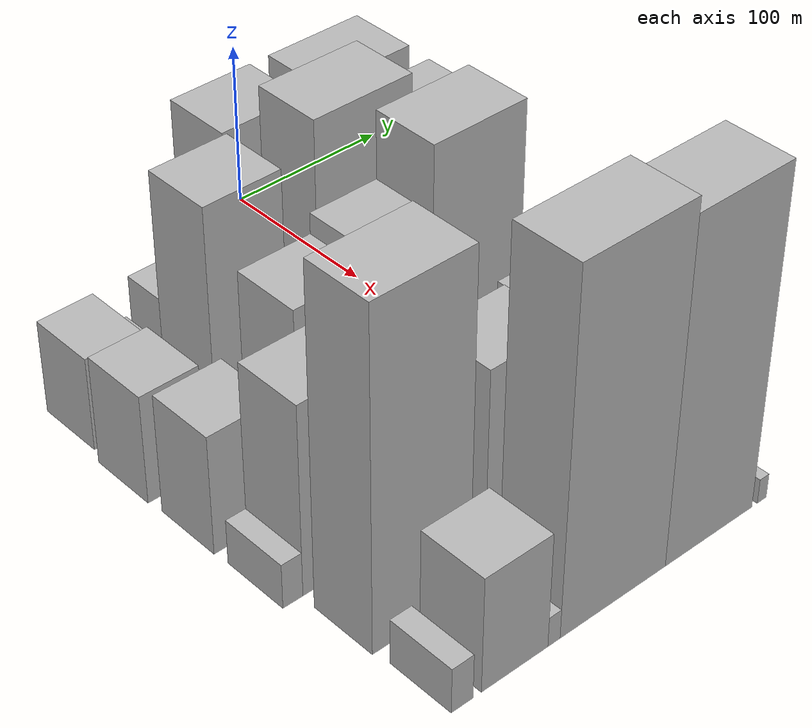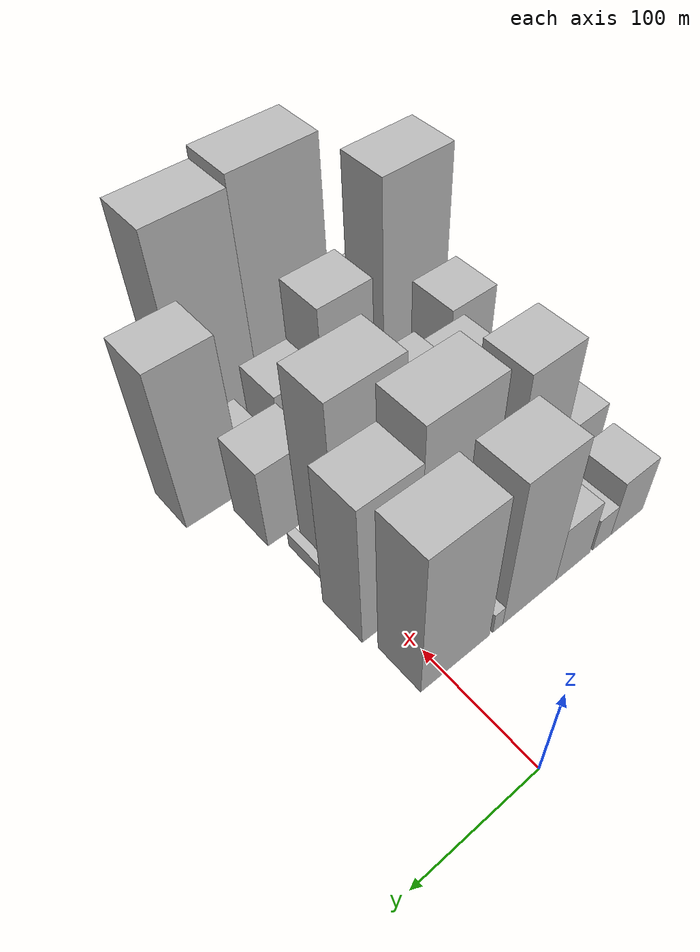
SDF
<sdf version="1.6">
 <world name="default">
  <model name="building_17">
   <static>1</static>
   <pose>100.0000 -172.8965 0 0.000000 0.000000 0.000000</pose>
   <link name="link">
    <pose>0 0 28.50 0 0 0</pose>
    <collision name="collision"><geometry><box><size>40.0000 33.7787 57.0000</size></box></geometry></collision>
    <visual name="visual">
     <cast_shadows>0</cast_shadows>
     <geometry><box><size>40.0000 33.7787 57.0000</size></box></geometry>
     <material>
      <script>
       <uri>model://HANNAS_wall/materials/scripts</uri>
       <uri>model://HANNAS_wall/materials/textures</uri>
       <name>vrc/HANNAS_wall</name>
      </script>
     </material>
    </visual>
   </link>
  </model>
  <model name="building_18">
   <static>1</static>
   <pose>100.0000 -146.7060 0 0.000000 0.000000 0.000000</pose>
   <link name="link">
    <pose>0 0 16.50 0 0 0</pose>
    <collision name="collision"><geometry><box><size>40.0000 18.6024 33.0000</size></box></geometry></collision>
    <visual name="visual">
     <cast_shadows>0</cast_shadows>
     <geometry><box><size>40.0000 18.6024 33.0000</size></box></geometry>
     <material>
      <script>
       <uri>model://HANNAS_wall/materials/scripts</uri>
       <uri>model://HANNAS_wall/materials/textures</uri>
       <name>vrc/HANNAS_wall</name>
      </script>
     </material>
    </visual>
   </link>
  </model>
  <model name="building_19">
   <static>1</static>
   <pose>100.0000 -117.5233 0 0.000000 0.000000 0.000000</pose>
   <link name="link">
    <pose>0 0 28.50 0 0 0</pose>
    <collision name="collision"><geometry><box><size>40.0000 33.7629 57.0000</size></box></geometry></collision>
    <visual name="visual">
     <cast_shadows>0</cast_shadows>
     <geometry><box><size>40.0000 33.7629 57.0000</size></box></geometry>
     <material>
      <script>
       <uri>model://HANNAS_wall/materials/scripts</uri>
       <uri>model://HANNAS_wall/materials/textures</uri>
       <name>vrc/HANNAS_wall</name>
      </script>
     </material>
    </visual>
   </link>
  </model>
  <model name="building_20">
   <static>1</static>
   <pose>100.0000 -75.8628 0 0.000000 0.000000 0.000000</pose>
   <link name="link">
    <pose>0 0 73.50 0 0 0</pose>
    <collision name="collision"><geometry><box><size>40.0000 49.5582 147.0000</size></box></geometry></collision>
    <visual name="visual">
     <cast_shadows>0</cast_shadows>
     <geometry><box><size>40.0000 49.5582 147.0000</size></box></geometry>
     <material>
      <script>
       <uri>model://HANNAS_wall/materials/scripts</uri>
       <uri>model://HANNAS_wall/materials/textures</uri>
       <name>vrc/HANNAS_wall</name>
      </script>
     </material>
    </visual>
   </link>
  </model>
  <model name="building_21">
   <static>1</static>
   <pose>100.0000 -46.5748 0 0.000000 0.000000 0.000000</pose>
   <link name="link">
    <pose>0 0 10.50 0 0 0</pose>
    <collision name="collision"><geometry><box><size>40.0000 9.0179 21.0000</size></box></geometry></collision>
    <visual name="visual">
     <cast_shadows>0</cast_shadows>
     <geometry><box><size>40.0000 9.0179 21.0000</size></box></geometry>
     <material>
      <script>
       <uri>model://HANNAS_wall/materials/scripts</uri>
       <uri>model://HANNAS_wall/materials/textures</uri>
       <name>vrc/HANNAS_wall</name>
      </script>
     </material>
    </visual>
   </link>
  </model>
  <model name="building_22">
   <static>1</static>
   <pose>100.0000 -9.7291 0 0.000000 0.000000 0.000000</pose>
   <link name="link">
    <pose>0 0 73.50 0 0 0</pose>
    <collision name="collision"><geometry><box><size>40.0000 58.6735 147.0000</size></box></geometry></collision>
    <visual name="visual">
     <cast_shadows>0</cast_shadows>
     <geometry><box><size>40.0000 58.6735 147.0000</size></box></geometry>
     <material>
      <script>
       <uri>model://HANNAS_wall/materials/scripts</uri>
       <uri>model://HANNAS_wall/materials/textures</uri>
       <name>vrc/HANNAS_wall</name>
      </script>
     </material>
    </visual>
   </link>
  </model>
  <model name="building_64">
   <static>1</static>
   <pose>149.0000 -176.1616 0 0.000000 0.000000 0.000000</pose>
   <link name="link">
    <pose>0 0 33.00 0 0 0</pose>
    <collision name="collision"><geometry><box><size>40.0000 35.1316 66.0000</size></box></geometry></collision>
    <visual name="visual">
     <cast_shadows>0</cast_shadows>
     <geometry><box><size>40.0000 35.1316 66.0000</size></box></geometry>
     <material>
      <script>
       <uri>model://HANNAS_wall/materials/scripts</uri>
       <uri>model://HANNAS_wall/materials/textures</uri>
       <name>vrc/HANNAS_wall</name>
      </script>
     </material>
    </visual>
   </link>
  </model>
  <model name="building_65">
   <static>1</static>
   <pose>149.0000 -127.5393 0 0.000000 0.000000 0.000000</pose>
   <link name="link">
    <pose>0 0 76.50 0 0 0</pose>
    <collision name="collision"><geometry><box><size>40.0000 46.1130 153.0000</size></box></geometry></collision>
    <visual name="visual">
     <cast_shadows>0</cast_shadows>
     <geometry><box><size>40.0000 46.1130 153.0000</size></box></geometry>
     <material>
      <script>
       <uri>model://HANNAS_wall/materials/scripts</uri>
       <uri>model://HANNAS_wall/materials/textures</uri>
       <name>vrc/HANNAS_wall</name>
      </script>
     </material>
    </visual>
   </link>
  </model>
  <model name="building_66">
   <static>1</static>
   <pose>149.0000 -89.4264 0 0.000000 0.000000 0.000000</pose>
   <link name="link">
    <pose>0 0 10.50 0 0 0</pose>
    <collision name="collision"><geometry><box><size>40.0000 10.1128 21.0000</size></box></geometry></collision>
    <visual name="visual">
     <cast_shadows>0</cast_shadows>
     <geometry><box><size>40.0000 10.1128 21.0000</size></box></geometry>
     <material>
      <script>
       <uri>model://HANNAS_wall/materials/scripts</uri>
       <uri>model://HANNAS_wall/materials/textures</uri>
       <name>vrc/HANNAS_wall</name>
      </script>
     </material>
    </visual>
   </link>
  </model>
  <model name="building_67">
   <static>1</static>
   <pose>149.0000 -53.6856 0 0.000000 0.000000 0.000000</pose>
   <link name="link">
    <pose>0 0 85.50 0 0 0</pose>
    <collision name="collision"><geometry><box><size>40.0000 61.3687 171.0000</size></box></geometry></collision>
    <visual name="visual">
     <cast_shadows>0</cast_shadows>
     <geometry><box><size>40.0000 61.3687 171.0000</size></box></geometry>
     <material>
      <script>
       <uri>model://HANNAS_wall/materials/scripts</uri>
       <uri>model://HANNAS_wall/materials/textures</uri>
       <name>vrc/HANNAS_wall</name>
      </script>
     </material>
    </visual>
   </link>
  </model>
  <model name="building_68">
   <static>1</static>
   <pose>149.0000 0.9310 0 0.000000 0.000000 0.000000</pose>
   <link name="link">
    <pose>0 0 70.50 0 0 0</pose>
    <collision name="collision"><geometry><box><size>40.0000 47.8645 141.0000</size></box></geometry></collision>
    <visual name="visual">
     <cast_shadows>0</cast_shadows>
     <geometry><box><size>40.0000 47.8645 141.0000</size></box></geometry>
     <material>
      <script>
       <uri>model://HANNAS_wall/materials/scripts</uri>
       <uri>model://HANNAS_wall/materials/textures</uri>
       <name>vrc/HANNAS_wall</name>
      </script>
     </material>
    </visual>
   </link>
  </model>
  <model name="building_113">
   <static>1</static>
   <pose>198.0000 -171.9728 0 0.000000 0.000000 0.000000</pose>
   <link name="link">
    <pose>0 0 36.00 0 0 0</pose>
    <collision name="collision"><geometry><box><size>40.0000 40.4430 72.0000</size></box></geometry></collision>
    <visual name="visual">
     <cast_shadows>0</cast_shadows>
     <geometry><box><size>40.0000 40.4430 72.0000</size></box></geometry>
     <material>
      <script>
       <uri>model://HANNAS_wall/materials/scripts</uri>
       <uri>model://HANNAS_wall/materials/textures</uri>
       <name>vrc/HANNAS_wall</name>
      </script>
     </material>
    </visual>
   </link>
  </model>
  <model name="building_114">
   <static>1</static>
   <pose>198.0000 -145.6920 0 0.000000 0.000000 0.000000</pose>
   <link name="link">
    <pose>0 0 13.50 0 0 0</pose>
    <collision name="collision"><geometry><box><size>40.0000 12.1185 27.0000</size></box></geometry></collision>
    <visual name="visual">
     <cast_shadows>0</cast_shadows>
     <geometry><box><size>40.0000 12.1185 27.0000</size></box></geometry>
     <material>
      <script>
       <uri>model://HANNAS_wall/materials/scripts</uri>
       <uri>model://HANNAS_wall/materials/textures</uri>
       <name>vrc/HANNAS_wall</name>
      </script>
     </material>
    </visual>
   </link>
  </model>
  <model name="building_115">
   <static>1</static>
   <pose>198.0000 -117.6447 0 0.000000 0.000000 0.000000</pose>
   <link name="link">
    <pose>0 0 58.50 0 0 0</pose>
    <collision name="collision"><geometry><box><size>40.0000 43.9761 117.0000</size></box></geometry></collision>
    <visual name="visual">
     <cast_shadows>0</cast_shadows>
     <geometry><box><size>40.0000 43.9761 117.0000</size></box></geometry>
     <material>
      <script>
       <uri>model://HANNAS_wall/materials/scripts</uri>
       <uri>model://HANNAS_wall/materials/textures</uri>
       <name>vrc/HANNAS_wall</name>
      </script>
     </material>
    </visual>
   </link>
  </model>
  <model name="building_116">
   <static>1</static>
   <pose>198.0000 -74.8340 0 0.000000 0.000000 0.000000</pose>
   <link name="link">
    <pose>0 0 64.50 0 0 0</pose>
    <collision name="collision"><geometry><box><size>40.0000 41.6453 129.0000</size></box></geometry></collision>
    <visual name="visual">
     <cast_shadows>0</cast_shadows>
     <geometry><box><size>40.0000 41.6453 129.0000</size></box></geometry>
     <material>
      <script>
       <uri>model://HANNAS_wall/materials/scripts</uri>
       <uri>model://HANNAS_wall/materials/textures</uri>
       <name>vrc/HANNAS_wall</name>
      </script>
     </material>
    </visual>
   </link>
  </model>
  <model name="building_117">
   <static>1</static>
   <pose>198.0000 -24.2948 0 0.000000 0.000000 0.000000</pose>
   <link name="link">
    <pose>0 0 84.00 0 0 0</pose>
    <collision name="collision"><geometry><box><size>40.0000 59.4331 168.0000</size></box></geometry></collision>
    <visual name="visual">
     <cast_shadows>0</cast_shadows>
     <geometry><box><size>40.0000 59.4331 168.0000</size></box></geometry>
     <material>
      <script>
       <uri>model://HANNAS_wall/materials/scripts</uri>
       <uri>model://HANNAS_wall/materials/textures</uri>
       <name>vrc/HANNAS_wall</name>
      </script>
     </material>
    </visual>
   </link>
  </model>
  <model name="building_118">
   <static>1</static>
   <pose>198.0000 11.9076 0 0.000000 0.000000 0.000000</pose>
   <link name="link">
    <pose>0 0 7.50 0 0 0</pose>
    <collision name="collision"><geometry><box><size>40.0000 6.9717 15.0000</size></box></geometry></collision>
    <visual name="visual">
     <cast_shadows>0</cast_shadows>
     <geometry><box><size>40.0000 6.9717 15.0000</size></box></geometry>
     <material>
      <script>
       <uri>model://HANNAS_wall/materials/scripts</uri>
       <uri>model://HANNAS_wall/materials/textures</uri>
       <name>vrc/HANNAS_wall</name>
      </script>
     </material>
    </visual>
   </link>
  </model>
  <model name="building_161">
   <static>1</static>
   <pose>247.0000 -185.0529 0 0.000000 0.000000 0.000000</pose>
   <link name="link">
    <pose>0 0 13.50 0 0 0</pose>
    <collision name="collision"><geometry><box><size>40.0000 11.9383 27.0000</size></box></geometry></collision>
    <visual name="visual">
     <cast_shadows>0</cast_shadows>
     <geometry><box><size>40.0000 11.9383 27.0000</size></box></geometry>
     <material>
      <script>
       <uri>model://HANNAS_wall/materials/scripts</uri>
       <uri>model://HANNAS_wall/materials/textures</uri>
       <name>vrc/HANNAS_wall</name>
      </script>
     </material>
    </visual>
   </link>
  </model>
  <model name="building_162">
   <static>1</static>
   <pose>247.0000 -158.8027 0 0.000000 0.000000 0.000000</pose>
   <link name="link">
    <pose>0 0 57.00 0 0 0</pose>
    <collision name="collision"><geometry><box><size>40.0000 40.5620 114.0000</size></box></geometry></collision>
    <visual name="visual">
     <cast_shadows>0</cast_shadows>
     <geometry><box><size>40.0000 40.5620 114.0000</size></box></geometry>
     <material>
      <script>
       <uri>model://HANNAS_wall/materials/scripts</uri>
       <uri>model://HANNAS_wall/materials/textures</uri>
       <name>vrc/HANNAS_wall</name>
      </script>
     </material>
    </visual>
   </link>
  </model>
  <model name="building_163">
   <static>1</static>
   <pose>247.0000 -127.0566 0 0.000000 0.000000 0.000000</pose>
   <link name="link">
    <pose>0 0 19.50 0 0 0</pose>
    <collision name="collision"><geometry><box><size>40.0000 22.9303 39.0000</size></box></geometry></collision>
    <visual name="visual">
     <cast_shadows>0</cast_shadows>
     <geometry><box><size>40.0000 22.9303 39.0000</size></box></geometry>
     <material>
      <script>
       <uri>model://HANNAS_wall/materials/scripts</uri>
       <uri>model://HANNAS_wall/materials/textures</uri>
       <name>vrc/HANNAS_wall</name>
      </script>
     </material>
    </visual>
   </link>
  </model>
  <model name="building_164">
   <static>1</static>
   <pose>247.0000 -101.3671 0 0.000000 0.000000 0.000000</pose>
   <link name="link">
    <pose>0 0 15.00 0 0 0</pose>
    <collision name="collision"><geometry><box><size>40.0000 16.4486 30.0000</size></box></geometry></collision>
    <visual name="visual">
     <cast_shadows>0</cast_shadows>
     <geometry><box><size>40.0000 16.4486 30.0000</size></box></geometry>
     <material>
      <script>
       <uri>model://HANNAS_wall/materials/scripts</uri>
       <uri>model://HANNAS_wall/materials/textures</uri>
       <name>vrc/HANNAS_wall</name>
      </script>
     </material>
    </visual>
   </link>
  </model>
  <model name="building_165">
   <static>1</static>
   <pose>247.0000 -70.6679 0 0.000000 0.000000 0.000000</pose>
   <link name="link">
    <pose>0 0 27.00 0 0 0</pose>
    <collision name="collision"><geometry><box><size>40.0000 28.9497 54.0000</size></box></geometry></collision>
    <visual name="visual">
     <cast_shadows>0</cast_shadows>
     <geometry><box><size>40.0000 28.9497 54.0000</size></box></geometry>
     <material>
      <script>
       <uri>model://HANNAS_wall/materials/scripts</uri>
       <uri>model://HANNAS_wall/materials/textures</uri>
       <name>vrc/HANNAS_wall</name>
      </script>
     </material>
    </visual>
   </link>
  </model>
  <model name="building_166">
   <static>1</static>
   <pose>247.0000 -45.3790 0 0.000000 0.000000 0.000000</pose>
   <link name="link">
    <pose>0 0 19.50 0 0 0</pose>
    <collision name="collision"><geometry><box><size>40.0000 21.6282 39.0000</size></box></geometry></collision>
    <visual name="visual">
     <cast_shadows>0</cast_shadows>
     <geometry><box><size>40.0000 21.6282 39.0000</size></box></geometry>
     <material>
      <script>
       <uri>model://HANNAS_wall/materials/scripts</uri>
       <uri>model://HANNAS_wall/materials/textures</uri>
       <name>vrc/HANNAS_wall</name>
      </script>
     </material>
    </visual>
   </link>
  </model>
  <model name="building_167">
   <static>1</static>
   <pose>247.0000 -24.8988 0 0.000000 0.000000 0.000000</pose>
   <link name="link">
    <pose>0 0 12.00 0 0 0</pose>
    <collision name="collision"><geometry><box><size>40.0000 11.3321 24.0000</size></box></geometry></collision>
    <visual name="visual">
     <cast_shadows>0</cast_shadows>
     <geometry><box><size>40.0000 11.3321 24.0000</size></box></geometry>
     <material>
      <script>
       <uri>model://HANNAS_wall/materials/scripts</uri>
       <uri>model://HANNAS_wall/materials/textures</uri>
       <name>vrc/HANNAS_wall</name>
      </script>
     </material>
    </visual>
   </link>
  </model>
  <model name="building_168">
   <static>1</static>
   <pose>247.0000 3.5752 0 0.000000 0.000000 0.000000</pose>
   <link name="link">
    <pose>0 0 39.00 0 0 0</pose>
    <collision name="collision"><geometry><box><size>40.0000 45.6160 78.0000</size></box></geometry></collision>
    <visual name="visual">
     <cast_shadows>0</cast_shadows>
     <geometry><box><size>40.0000 45.6160 78.0000</size></box></geometry>
     <material>
      <script>
       <uri>model://HANNAS_wall/materials/scripts</uri>
       <uri>model://HANNAS_wall/materials/textures</uri>
       <name>vrc/HANNAS_wall</name>
      </script>
     </material>
    </visual>
   </link>
  </model>
  <model name="building_217">
   <static>1</static>
   <pose>296.0000 -149.9279 0 0.000000 0.000000 0.000000</pose>
   <link name="link">
    <pose>0 0 99.00 0 0 0</pose>
    <collision name="collision"><geometry><box><size>40.0000 59.9232 198.0000</size></box></geometry></collision>
    <visual name="visual">
     <cast_shadows>0</cast_shadows>
     <geometry><box><size>40.0000 59.9232 198.0000</size></box></geometry>
     <material>
      <script>
       <uri>model://HANNAS_wall/materials/scripts</uri>
       <uri>model://HANNAS_wall/materials/textures</uri>
       <name>vrc/HANNAS_wall</name>
      </script>
     </material>
    </visual>
   </link>
  </model>
  <model name="building_218">
   <static>1</static>
   <pose>296.0000 -87.5453 0 0.000000 0.000000 0.000000</pose>
   <link name="link">
    <pose>0 0 63.00 0 0 0</pose>
    <collision name="collision"><geometry><box><size>40.0000 46.8420 126.0000</size></box></geometry></collision>
    <visual name="visual">
     <cast_shadows>0</cast_shadows>
     <geometry><box><size>40.0000 46.8420 126.0000</size></box></geometry>
     <material>
      <script>
       <uri>model://HANNAS_wall/materials/scripts</uri>
       <uri>model://HANNAS_wall/materials/textures</uri>
       <name>vrc/HANNAS_wall</name>
      </script>
     </material>
    </visual>
   </link>
  </model>
  <model name="building_219">
   <static>1</static>
   <pose>296.0000 -43.8783 0 0.000000 0.000000 0.000000</pose>
   <link name="link">
    <pose>0 0 36.00 0 0 0</pose>
    <collision name="collision"><geometry><box><size>40.0000 40.4922 72.0000</size></box></geometry></collision>
    <visual name="visual">
     <cast_shadows>0</cast_shadows>
     <geometry><box><size>40.0000 40.4922 72.0000</size></box></geometry>
     <material>
      <script>
       <uri>model://HANNAS_wall/materials/scripts</uri>
       <uri>model://HANNAS_wall/materials/textures</uri>
       <name>vrc/HANNAS_wall</name>
      </script>
     </material>
    </visual>
   </link>
  </model>
  <model name="building_220">
   <static>1</static>
   <pose>296.0000 -19.4267 0 0.000000 0.000000 0.000000</pose>
   <link name="link">
    <pose>0 0 9.00 0 0 0</pose>
    <collision name="collision"><geometry><box><size>40.0000 8.4109 18.0000</size></box></geometry></collision>
    <visual name="visual">
     <cast_shadows>0</cast_shadows>
     <geometry><box><size>40.0000 8.4109 18.0000</size></box></geometry>
     <material>
      <script>
       <uri>model://HANNAS_wall/materials/scripts</uri>
       <uri>model://HANNAS_wall/materials/textures</uri>
       <name>vrc/HANNAS_wall</name>
      </script>
     </material>
    </visual>
   </link>
  </model>
  <model name="building_221">
   <static>1</static>
   <pose>296.0000 -2.4425 0 0.000000 0.000000 0.000000</pose>
   <link name="link">
    <pose>0 0 22.50 0 0 0</pose>
    <collision name="collision"><geometry><box><size>40.0000 25.5575 45.0000</size></box></geometry></collision>
    <visual name="visual">
     <cast_shadows>0</cast_shadows>
     <geometry><box><size>40.0000 25.5575 45.0000</size></box></geometry>
     <material>
      <script>
       <uri>model://HANNAS_wall/materials/scripts</uri>
       <uri>model://HANNAS_wall/materials/textures</uri>
       <name>vrc/HANNAS_wall</name>
      </script>
     </material>
    </visual>
   </link>
  </model>
  <model name="building_222">
   <static>1</static>
   <pose>296.0000 35.0848 0 0.000000 0.000000 0.000000</pose>
   <link name="link">
    <pose>0 0 75.00 0 0 0</pose>
    <collision name="collision"><geometry><box><size>40.0000 49.4970 150.0000</size></box></geometry></collision>
    <visual name="visual">
     <cast_shadows>0</cast_shadows>
     <geometry><box><size>40.0000 49.4970 150.0000</size></box></geometry>
     <material>
      <script>
       <uri>model://HANNAS_wall/materials/scripts</uri>
       <uri>model://HANNAS_wall/materials/textures</uri>
       <name>vrc/HANNAS_wall</name>
      </script>
     </material>
    </visual>
   </link>
  </model>
  <model name="building_268">
   <static>1</static>
   <pose>345.0000 -170.9369 0 0.000000 0.000000 0.000000</pose>
   <link name="link">
    <pose>0 0 13.50 0 0 0</pose>
    <collision name="collision"><geometry><box><size>40.0000 13.0807 27.0000</size></box></geometry></collision>
    <visual name="visual">
     <cast_shadows>0</cast_shadows>
     <geometry><box><size>40.0000 13.0807 27.0000</size></box></geometry>
     <material>
      <script>
       <uri>model://HANNAS_wall/materials/scripts</uri>
       <uri>model://HANNAS_wall/materials/textures</uri>
       <name>vrc/HANNAS_wall</name>
      </script>
     </material>
    </visual>
   </link>
  </model>
  <model name="building_269">
   <static>1</static>
   <pose>345.0000 -138.8468 0 0.000000 0.000000 0.000000</pose>
   <link name="link">
    <pose>0 0 34.50 0 0 0</pose>
    <collision name="collision"><geometry><box><size>40.0000 41.0995 69.0000</size></box></geometry></collision>
    <visual name="visual">
     <cast_shadows>0</cast_shadows>
     <geometry><box><size>40.0000 41.0995 69.0000</size></box></geometry>
     <material>
      <script>
       <uri>model://HANNAS_wall/materials/scripts</uri>
       <uri>model://HANNAS_wall/materials/textures</uri>
       <name>vrc/HANNAS_wall</name>
      </script>
     </material>
    </visual>
   </link>
  </model>
  <model name="building_270">
   <static>1</static>
   <pose>345.0000 -114.4339 0 0.000000 0.000000 0.000000</pose>
   <link name="link">
    <pose>0 0 9.00 0 0 0</pose>
    <collision name="collision"><geometry><box><size>40.0000 7.7265 18.0000</size></box></geometry></collision>
    <visual name="visual">
     <cast_shadows>0</cast_shadows>
     <geometry><box><size>40.0000 7.7265 18.0000</size></box></geometry>
     <material>
      <script>
       <uri>model://HANNAS_wall/materials/scripts</uri>
       <uri>model://HANNAS_wall/materials/textures</uri>
       <name>vrc/HANNAS_wall</name>
      </script>
     </material>
    </visual>
   </link>
  </model>
  <model name="building_271">
   <static>1</static>
   <pose>345.0000 -75.8819 0 0.000000 0.000000 0.000000</pose>
   <link name="link">
    <pose>0 0 105.00 0 0 0</pose>
    <collision name="collision"><geometry><box><size>40.0000 69.3774 210.0000</size></box></geometry></collision>
    <visual name="visual">
     <cast_shadows>0</cast_shadows>
     <geometry><box><size>40.0000 69.3774 210.0000</size></box></geometry>
     <material>
      <script>
       <uri>model://HANNAS_wall/materials/scripts</uri>
       <uri>model://HANNAS_wall/materials/textures</uri>
       <name>vrc/HANNAS_wall</name>
      </script>
     </material>
    </visual>
   </link>
  </model>
  <model name="building_272">
   <static>1</static>
   <pose>345.0000 -10.7732 0 0.000000 0.000000 0.000000</pose>
   <link name="link">
    <pose>0 0 100.50 0 0 0</pose>
    <collision name="collision"><geometry><box><size>40.0000 60.8400 201.0000</size></box></geometry></collision>
    <visual name="visual">
     <cast_shadows>0</cast_shadows>
     <geometry><box><size>40.0000 60.8400 201.0000</size></box></geometry>
     <material>
      <script>
       <uri>model://HANNAS_wall/materials/scripts</uri>
       <uri>model://HANNAS_wall/materials/textures</uri>
       <name>vrc/HANNAS_wall</name>
      </script>
     </material>
    </visual>
   </link>
  </model>
  <model name="building_273">
   <static>1</static>
   <pose>345.0000 26.8844 0 0.000000 0.000000 0.000000</pose>
   <link name="link">
    <pose>0 0 7.50 0 0 0</pose>
    <collision name="collision"><geometry><box><size>40.0000 6.4751 15.0000</size></box></geometry></collision>
    <visual name="visual">
     <cast_shadows>0</cast_shadows>
     <geometry><box><size>40.0000 6.4751 15.0000</size></box></geometry>
     <material>
      <script>
       <uri>model://HANNAS_wall/materials/scripts</uri>
       <uri>model://HANNAS_wall/materials/textures</uri>
       <name>vrc/HANNAS_wall</name>
      </script>
     </material>
    </visual>
   </link>
  </model>
 </world>
</sdf>
